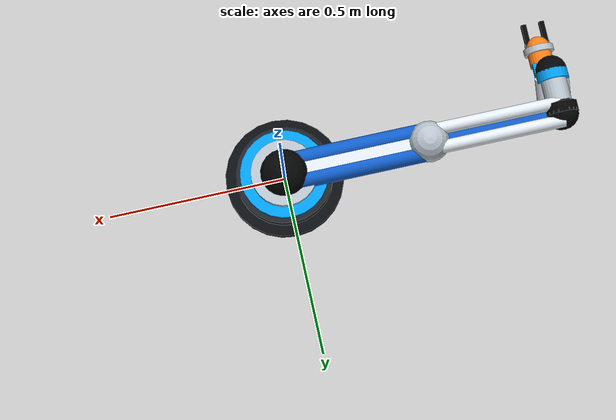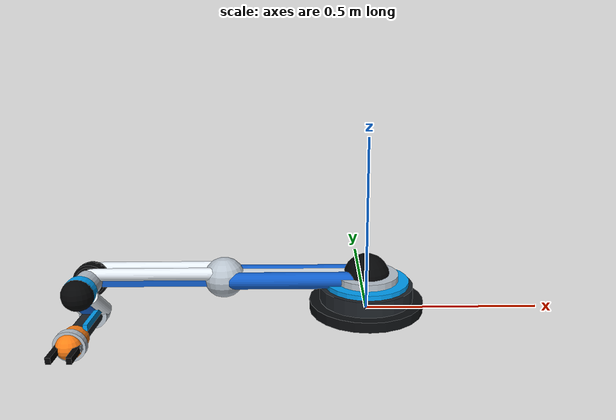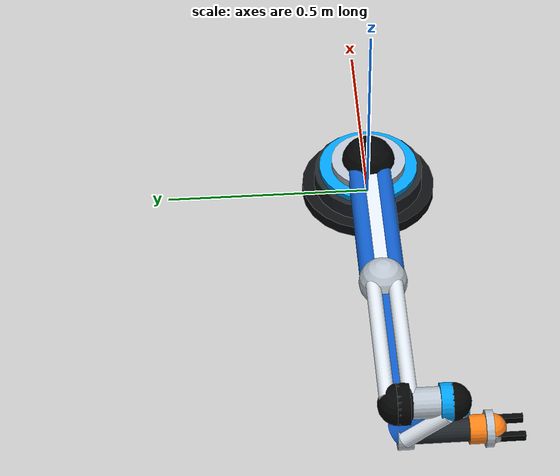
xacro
<?xml version="1.0"?>
<robot xmlns:xacro="http://www.ros.org/wiki/xacro" name="six_axis_course_arm">
  <xacro:arg name="controllers_file" default="" />

  <xacro:property name="d1" value="0.0985" />
  <xacro:property name="a2" value="-0.408" />
  <xacro:property name="a3" value="-0.376" />
  <xacro:property name="a2_len" value="0.408" />
  <xacro:property name="a3_len" value="0.376" />
  <xacro:property name="d4" value="0.1215" />
  <xacro:property name="d5" value="0.1025" />
  <xacro:property name="d6" value="0.094" />
  <xacro:property name="d45_len" value="0.15896068696" />
  <xacro:property name="d45_angle" value="0.87001704475" />
  <!-- Reachable, non-singular front-center work pose. -->
  <xacro:property name="initial_joint_1" value="-0.35" />
  <xacro:property name="initial_joint_2" value="-1.0" />
  <xacro:property name="initial_joint_3" value="1.55" />
  <xacro:property name="initial_joint_4" value="-0.5" />
  <xacro:property name="initial_joint_5" value="-0.35" />
  <xacro:property name="initial_joint_6" value="-0.2" />

  <xacro:macro name="cylinder_inertial" params="mass radius length xyz rpy">
    <inertial>
      <origin xyz="${xyz}" rpy="${rpy}" />
      <mass value="${mass}" />
      <inertia
        ixx="${mass * (3.0 * radius * radius + length * length) / 12.0}"
        ixy="0.0"
        ixz="0.0"
        iyy="${mass * (3.0 * radius * radius + length * length) / 12.0}"
        iyz="0.0"
        izz="${0.5 * mass * radius * radius}" />
    </inertial>
  </xacro:macro>

  <xacro:macro name="sphere_inertial" params="mass radius">
    <inertial>
      <origin xyz="0 0 0" rpy="0 0 0" />
      <mass value="${mass}" />
      <inertia
        ixx="${0.4 * mass * radius * radius}"
        ixy="0.0"
        ixz="0.0"
        iyy="${0.4 * mass * radius * radius}"
        iyz="0.0"
        izz="${0.4 * mass * radius * radius}" />
    </inertial>
  </xacro:macro>

  <xacro:macro name="visual_cylinder" params="radius length xyz rpy material">
    <visual>
      <origin xyz="${xyz}" rpy="${rpy}" />
      <geometry>
        <cylinder radius="${radius}" length="${length}" />
      </geometry>
      <material name="${material}" />
    </visual>
  </xacro:macro>

  <xacro:macro name="visual_sphere" params="radius xyz material">
    <visual>
      <origin xyz="${xyz}" rpy="0 0 0" />
      <geometry>
        <sphere radius="${radius}" />
      </geometry>
      <material name="${material}" />
    </visual>
  </xacro:macro>

  <xacro:macro name="visual_box" params="size xyz rpy material">
    <visual>
      <origin xyz="${xyz}" rpy="${rpy}" />
      <geometry>
        <box size="${size}" />
      </geometry>
      <material name="${material}" />
    </visual>
  </xacro:macro>

  <material name="base_dark">
    <color rgba="0.045 0.055 0.065 1.0" />
  </material>
  <material name="graphite">
    <color rgba="0.12 0.14 0.16 1.0" />
  </material>
  <material name="arm_blue">
    <color rgba="0.06 0.36 0.78 1.0" />
  </material>
  <material name="arm_gray">
    <color rgba="0.72 0.76 0.80 1.0" />
  </material>
  <material name="soft_white">
    <color rgba="0.88 0.91 0.94 1.0" />
  </material>
  <material name="accent_blue">
    <color rgba="0.00 0.62 0.95 1.0" />
  </material>
  <material name="joint_black">
    <color rgba="0.015 0.018 0.022 1.0" />
  </material>
  <material name="tool_orange">
    <color rgba="1.00 0.50 0.08 1.0" />
  </material>

  <link name="world" />

  <link name="base_link">
    <xacro:cylinder_inertial
      mass="3.0" radius="0.13" length="0.07"
      xyz="0 0 0.035" rpy="0 0 0" />
    <xacro:visual_cylinder radius="0.165" length="0.030" xyz="0 0 0.015" rpy="0 0 0" material="base_dark" />
    <xacro:visual_cylinder radius="0.135" length="0.050" xyz="0 0 0.050" rpy="0 0 0" material="graphite" />
    <xacro:visual_cylinder radius="0.122" length="0.014" xyz="0 0 0.082" rpy="0 0 0" material="accent_blue" />
    <xacro:visual_cylinder radius="0.092" length="0.020" xyz="0 0 0.098" rpy="0 0 0" material="arm_gray" />
    <collision>
      <origin xyz="0 0 0.035" rpy="0 0 0" />
      <geometry>
        <cylinder radius="0.13" length="0.07" />
      </geometry>
    </collision>
  </link>

  <link name="link_1">
    <xacro:cylinder_inertial
      mass="1.5" radius="0.055" length="${d1}"
      xyz="0 0 ${-d1 / 2.0}" rpy="0 0 0" />
    <xacro:visual_cylinder radius="0.055" length="${d1}" xyz="0 0 ${-d1 / 2.0}" rpy="0 0 0" material="arm_blue" />
    <xacro:visual_cylinder radius="0.070" length="0.026" xyz="0 0 -0.010" rpy="0 0 0" material="joint_black" />
    <xacro:visual_cylinder radius="0.068" length="0.020" xyz="0 0 ${-d1 + 0.010}" rpy="0 0 0" material="arm_gray" />
    <xacro:visual_box size="0.030 0.012 ${d1 * 0.72}" xyz="0.048 0 ${-d1 / 2.0}" rpy="0 0 0" material="accent_blue" />
    <collision>
      <origin xyz="0 0 ${-d1 / 2.0}" rpy="0 0 0" />
      <geometry>
        <cylinder radius="0.055" length="${d1}" />
      </geometry>
    </collision>
  </link>

  <link name="link_2">
    <xacro:cylinder_inertial
      mass="1.5" radius="0.04" length="${a2_len}"
      xyz="${a2 / 2.0} 0 0" rpy="0 1.57079632679 0" />
    <xacro:visual_box size="${a2_len * 0.92} 0.074 0.038" xyz="${a2 / 2.0} 0 0" rpy="0 0 0" material="soft_white" />
    <xacro:visual_cylinder radius="0.024" length="${a2_len}" xyz="${a2 / 2.0} 0.030 0" rpy="0 1.57079632679 0" material="arm_blue" />
    <xacro:visual_cylinder radius="0.024" length="${a2_len}" xyz="${a2 / 2.0} -0.030 0" rpy="0 1.57079632679 0" material="arm_blue" />
    <xacro:visual_sphere radius="0.067" xyz="0 0 0" material="joint_black" />
    <xacro:visual_sphere radius="0.058" xyz="${a2} 0 0" material="arm_gray" />
    <collision>
      <origin xyz="${a2 / 2.0} 0 0" rpy="0 1.57079632679 0" />
      <geometry>
        <cylinder radius="0.04" length="${a2_len}" />
      </geometry>
    </collision>
  </link>

  <link name="link_3">
    <xacro:cylinder_inertial
      mass="1.2" radius="0.035" length="${a3_len}"
      xyz="${a3 / 2.0} 0 0" rpy="0 1.57079632679 0" />
    <xacro:visual_box size="${a3_len * 0.90} 0.060 0.032" xyz="${a3 / 2.0} 0 0" rpy="0 0 0" material="arm_blue" />
    <xacro:visual_cylinder radius="0.018" length="${a3_len}" xyz="${a3 / 2.0} 0.026 0.020" rpy="0 1.57079632679 0" material="soft_white" />
    <xacro:visual_cylinder radius="0.018" length="${a3_len}" xyz="${a3 / 2.0} -0.026 0.020" rpy="0 1.57079632679 0" material="soft_white" />
    <xacro:visual_sphere radius="0.055" xyz="0 0 0" material="arm_gray" />
    <xacro:visual_sphere radius="0.048" xyz="${a3} 0 0" material="joint_black" />
    <collision>
      <origin xyz="${a3 / 2.0} 0 0" rpy="0 1.57079632679 0" />
      <geometry>
        <cylinder radius="0.035" length="${a3_len}" />
      </geometry>
    </collision>
  </link>

  <link name="link_4">
    <xacro:cylinder_inertial
      mass="0.9" radius="0.032" length="${d4}"
      xyz="0 ${-d4 / 2.0} 0" rpy="1.57079632679 0 0" />
    <xacro:visual_cylinder radius="0.036" length="${d4}" xyz="0 ${-d4 / 2.0} 0" rpy="1.57079632679 0 0" material="arm_gray" />
    <xacro:visual_cylinder radius="0.048" length="0.030" xyz="0 -0.010 0" rpy="1.57079632679 0 0" material="joint_black" />
    <xacro:visual_cylinder radius="0.044" length="0.028" xyz="0 ${-d4 + 0.014} 0" rpy="1.57079632679 0 0" material="accent_blue" />
    <collision>
      <origin xyz="0 ${-d4 / 2.0} 0" rpy="1.57079632679 0 0" />
      <geometry>
        <cylinder radius="0.032" length="${d4}" />
      </geometry>
    </collision>
  </link>

  <link name="link_5">
    <xacro:cylinder_inertial
      mass="0.8" radius="0.03" length="${d45_len}"
      xyz="0 ${d4 / 2.0} ${-d5 / 2.0}" rpy="${d45_angle} 0 0" />
    <xacro:visual_cylinder radius="0.032" length="${d45_len}" xyz="0 ${d4 / 2.0} ${-d5 / 2.0}" rpy="${d45_angle} 0 0" material="arm_blue" />
    <xacro:visual_cylinder radius="0.020" length="${d45_len * 0.78}" xyz="0.028 ${d4 / 2.0} ${-d5 / 2.0}" rpy="${d45_angle} 0 0" material="soft_white" />
    <xacro:visual_cylinder radius="0.020" length="${d45_len * 0.78}" xyz="-0.028 ${d4 / 2.0} ${-d5 / 2.0}" rpy="${d45_angle} 0 0" material="soft_white" />
    <xacro:visual_sphere radius="0.044" xyz="0 0 0" material="joint_black" />
    <collision>
      <origin xyz="0 ${d4 / 2.0} ${-d5 / 2.0}" rpy="${d45_angle} 0 0" />
      <geometry>
        <cylinder radius="0.03" length="${d45_len}" />
      </geometry>
    </collision>
  </link>

  <link name="link_6">
    <xacro:cylinder_inertial
      mass="0.6" radius="0.026" length="${d4 + d6}"
      xyz="0 ${-(d4 + d6) / 2.0} 0" rpy="1.57079632679 0 0" />
    <xacro:visual_cylinder radius="0.027" length="${d4 + d6}" xyz="0 ${-(d4 + d6) / 2.0} 0" rpy="1.57079632679 0 0" material="graphite" />
    <xacro:visual_cylinder radius="0.039" length="0.036" xyz="0 -0.018 0" rpy="1.57079632679 0 0" material="arm_gray" />
    <xacro:visual_cylinder radius="0.034" length="0.052" xyz="0 ${-(d4 + d6) + 0.026} 0" rpy="1.57079632679 0 0" material="tool_orange" />
    <xacro:visual_box size="0.012 0.120 0.018" xyz="0.027 ${-(d4 + d6) / 2.0} 0.028" rpy="0 0 0" material="accent_blue" />
    <collision>
      <origin xyz="0 ${-(d4 + d6) / 2.0} 0" rpy="1.57079632679 0 0" />
      <geometry>
        <cylinder radius="0.026" length="${d4 + d6}" />
      </geometry>
    </collision>
  </link>

  <link name="tool0">
    <xacro:sphere_inertial mass="0.1" radius="0.035" />
    <xacro:visual_sphere radius="0.035" xyz="0 0 0" material="tool_orange" />
    <xacro:visual_cylinder radius="0.043" length="0.018" xyz="0 0.006 0" rpy="1.57079632679 0 0" material="arm_gray" />
    <xacro:visual_box size="0.014 0.070 0.018" xyz="0.026 -0.040 0" rpy="0 0 0" material="joint_black" />
    <xacro:visual_box size="0.014 0.070 0.018" xyz="-0.026 -0.040 0" rpy="0 0 0" material="joint_black" />
    <xacro:visual_box size="0.070 0.014 0.016" xyz="0 -0.010 0" rpy="0 0 0" material="arm_gray" />
    <collision>
      <origin xyz="0 0 0" rpy="0 0 0" />
      <geometry>
        <sphere radius="0.035" />
      </geometry>
    </collision>
  </link>

  <joint name="world_fixed" type="fixed">
    <parent link="world" />
    <child link="base_link" />
    <origin xyz="0 0 0" rpy="0 0 0" />
  </joint>

  <joint name="joint_1" type="revolute">
    <parent link="base_link" />
    <child link="link_1" />
    <origin xyz="0 0 ${d1}" rpy="0 0 0" />
    <axis xyz="0 0 1" />
    <limit lower="-3.14159" upper="3.14159" effort="60" velocity="1.5" />
    <dynamics damping="1.0" friction="0.05" />
  </joint>

  <joint name="joint_2" type="revolute">
    <parent link="link_1" />
    <child link="link_2" />
    <origin xyz="0 0 0" rpy="0 0 0" />
    <axis xyz="0 -1 0" />
    <limit lower="-2.61799" upper="2.61799" effort="60" velocity="1.5" />
    <dynamics damping="1.2" friction="0.05" />
  </joint>

  <joint name="joint_3" type="revolute">
    <parent link="link_2" />
    <child link="link_3" />
    <origin xyz="${a2} 0 0" rpy="0 0 0" />
    <axis xyz="0 -1 0" />
    <limit lower="-2.61799" upper="2.61799" effort="45" velocity="1.5" />
    <dynamics damping="1.0" friction="0.04" />
  </joint>

  <joint name="joint_4" type="revolute">
    <parent link="link_3" />
    <child link="link_4" />
    <origin xyz="${a3} 0 0" rpy="0 0 0" />
    <axis xyz="0 -1 0" />
    <limit lower="-3.14159" upper="3.14159" effort="35" velocity="2.0" />
    <dynamics damping="0.7" friction="0.03" />
  </joint>

  <joint name="joint_5" type="revolute">
    <parent link="link_4" />
    <child link="link_5" />
    <origin xyz="0 ${-d4} 0" rpy="0 0 0" />
    <axis xyz="0 0 -1" />
    <limit lower="-3.14159" upper="3.14159" effort="25" velocity="2.0" />
    <dynamics damping="0.5" friction="0.02" />
  </joint>

  <joint name="joint_6" type="revolute">
    <parent link="link_5" />
    <child link="link_6" />
    <origin xyz="0 ${d4} ${-d5}" rpy="0 0 0" />
    <axis xyz="0 -1 0" />
    <limit lower="-3.14159" upper="3.14159" effort="20" velocity="2.5" />
    <dynamics damping="0.35" friction="0.02" />
  </joint>

  <joint name="tool0_fixed" type="fixed">
    <parent link="link_6" />
    <child link="tool0" />
    <origin xyz="0 ${-(d4 + d6)} 0" rpy="0 0 0" />
  </joint>

  <ros2_control name="GazeboSystem" type="system">
    <hardware>
      <plugin>gz_ros2_control/GazeboSimSystem</plugin>
    </hardware>
    <joint name="joint_1">
      <command_interface name="position" />
      <state_interface name="position">
        <param name="initial_value">${initial_joint_1}</param>
      </state_interface>
      <state_interface name="velocity" />
    </joint>
    <joint name="joint_2">
      <command_interface name="position" />
      <state_interface name="position">
        <param name="initial_value">${initial_joint_2}</param>
      </state_interface>
      <state_interface name="velocity" />
    </joint>
    <joint name="joint_3">
      <command_interface name="position" />
      <state_interface name="position">
        <param name="initial_value">${initial_joint_3}</param>
      </state_interface>
      <state_interface name="velocity" />
    </joint>
    <joint name="joint_4">
      <command_interface name="position" />
      <state_interface name="position">
        <param name="initial_value">${initial_joint_4}</param>
      </state_interface>
      <state_interface name="velocity" />
    </joint>
    <joint name="joint_5">
      <command_interface name="position" />
      <state_interface name="position">
        <param name="initial_value">${initial_joint_5}</param>
      </state_interface>
      <state_interface name="velocity" />
    </joint>
    <joint name="joint_6">
      <command_interface name="position" />
      <state_interface name="position">
        <param name="initial_value">${initial_joint_6}</param>
      </state_interface>
      <state_interface name="velocity" />
    </joint>
  </ros2_control>

  <gazebo>
    <plugin filename="gz_ros2_control-system" name="gz_ros2_control::GazeboSimROS2ControlPlugin">
      <parameters>$(arg controllers_file)</parameters>
      <hold_joints>true</hold_joints>
      <position_proportional_gain>0.1</position_proportional_gain>
    </plugin>
  </gazebo>

  <gazebo reference="world_fixed">
    <preserveFixedJoint>true</preserveFixedJoint>
  </gazebo>
</robot>
